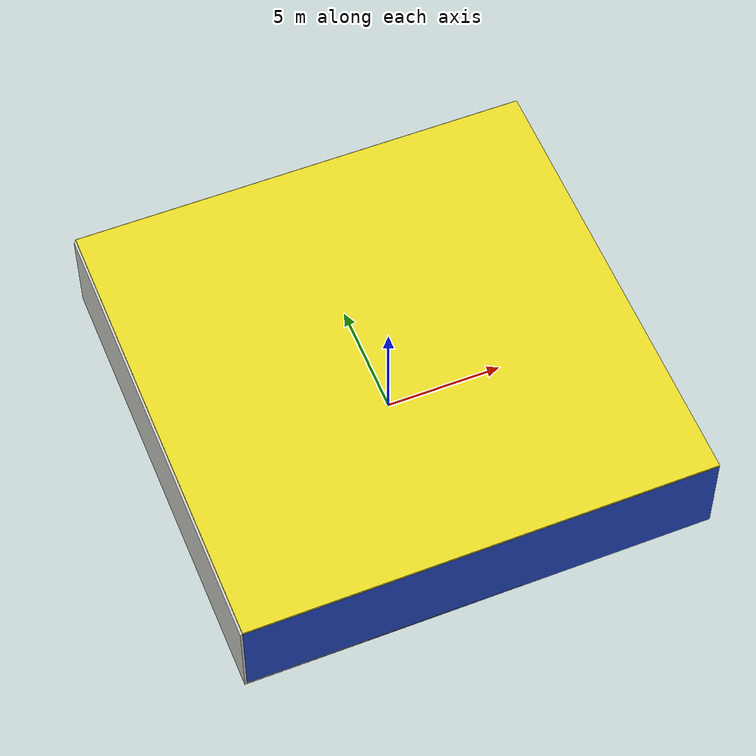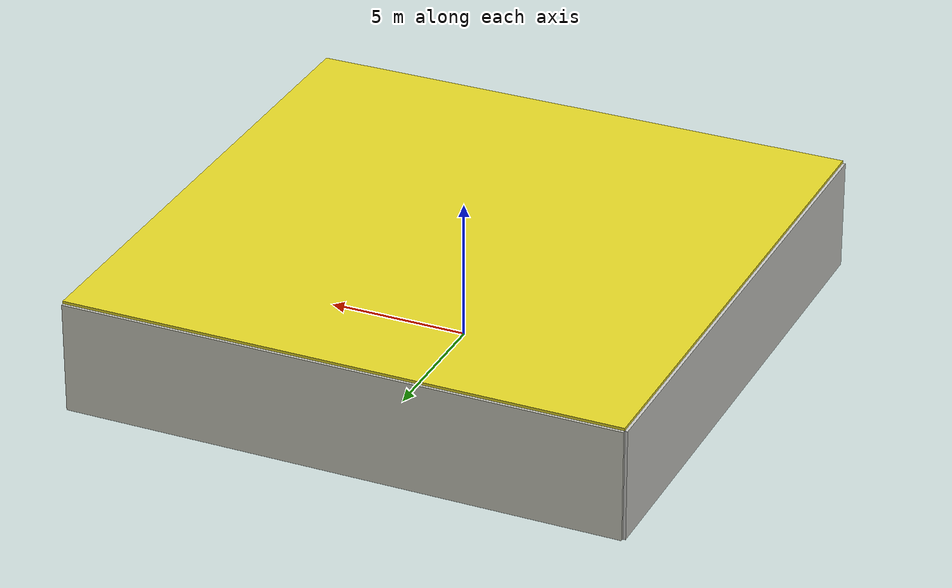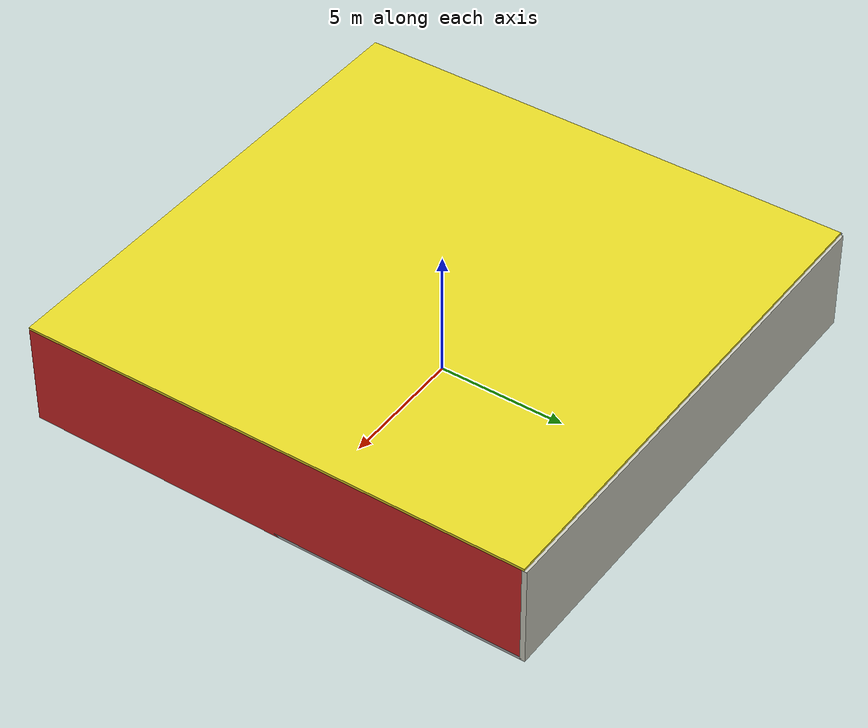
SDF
<sdf version="1.4">
 <world name="default">
  <physics type="ode">
   <max_step_size>0.001</max_step_size>
   <real_time_factor>1</real_time_factor>
   <real_time_update_rate>1000</real_time_update_rate>
   <gravity>0 0 -9.8</gravity>
  </physics>
  <scene><ambient>0.4 0.4 0.4 1</ambient><background>0.7 0.7 0.7 1</background><shadows>1</shadows></scene>
  <model name="Surrounding">
   <static>1</static>
   <link name="Ceiling">
    <collision name="Ceiling_Collision"><geometry><box><size>20 20 0.1</size></box></geometry></collision>
    <visual name="Ceiling_Visual">
     <geometry><box><size>20 20 0.1</size></box></geometry>
     <material>
      <script><uri>file://media/materials/scripts/gazebo.material</uri><name>Gazebo/YellowGlow</name></script>
     </material>
    </visual>
    <pose>0 0 4.05 0 0 0</pose>
   </link>
   <link name="Wall_South">
    <collision name="Wall_South_Collision">
     <geometry><box><size>20 0 4</size></box></geometry>
     <pose>0 0 2 0 -0 0</pose>
    </collision>
    <visual name="Wall_South_Visual">
     <pose>0 0 2 0 -0 0</pose>
     <geometry><box><size>20 0 4</size></box></geometry>
     <material>
      <script><uri>file://media/materials/scripts/gazebo.material</uri><name>Gazebo/Blue</name></script>
     </material>
    </visual>
    <velocity_decay><linear>0</linear><angular>0</angular></velocity_decay>
    <pose>0 -10 0 0 -0 0</pose>
   </link>
   <link name="Wall_East">
    <collision name="Wall_21_Collision">
     <geometry><box><size>20 0 4</size></box></geometry>
     <pose>0 0 2 0 -0 0</pose>
    </collision>
    <visual name="Wall_21_Visual">
     <pose>0 0 2 0 -0 0</pose>
     <geometry><box><size>20 0 4</size></box></geometry>
     <material>
      <script><uri>file://media/materials/scripts/gazebo.material</uri><name>Gazebo/RedGlow</name></script>
     </material>
    </visual>
    <velocity_decay><linear>0</linear><angular>0</angular></velocity_decay>
    <pose>10 0 0 0 -0 1.5708</pose>
   </link>
   <link name="Wall_North">
    <collision name="Wall_22_Collision">
     <geometry><box><size>20 0.2 4</size></box></geometry>
     <pose>0 0 2 0 -0 0</pose>
    </collision>
    <visual name="Wall_22_Visual">
     <pose>0 0 2 0 -0 0</pose>
     <geometry><box><size>20 0.2 4</size></box></geometry>
     <material>
      <script><uri>file://media/materials/scripts/gazebo.material</uri><name>Gazebo/PaintedWall</name></script>
     </material>
    </visual>
    <velocity_decay><linear>0</linear><angular>0</angular></velocity_decay>
    <pose>0 10 0 0 -0 0</pose>
   </link>
   <link name="Wall_West">
    <collision name="Wall_23_Collision">
     <geometry><box><size>20 0.2 4</size></box></geometry>
     <pose>0 0 2 0 -0 0</pose>
    </collision>
    <visual name="Wall_23_Visual">
     <pose>0 0 2 0 -0 0</pose>
     <geometry><box><size>20 0.2 4</size></box></geometry>
     <material>
      <script><uri>file://media/materials/scripts/gazebo.material</uri><name>Gazebo/CeilingTiled</name></script>
     </material>
    </visual>
    <velocity_decay><linear>0</linear><angular>0</angular></velocity_decay>
    <pose>-10 0 0 0 0 -1.5708</pose>
   </link>
   <link name="Ground_link">
    <collision name="collision">
     <pose>0 0 .05 0 -0 0</pose>
     <geometry><box><size>20 20 0.1</size></box></geometry>
    </collision>
    <visual name="visual">
     <pose>0 0 .05 0 -0 0</pose>
     <geometry><box><size>20 20 0.1</size></box></geometry>
     <material>
      <script><uri>file://media/materials/scripts/gazebo.material</uri><name>Gazebo/LightOff</name></script>
     </material>
    </visual>
   </link>
   <static>1</static>
  </model>
  <spherical_coordinates>
   <surface_model>EARTH_WGS84</surface_model>
   <latitude_deg>0</latitude_deg>
   <longitude_deg>0</longitude_deg>
   <elevation>0</elevation>
   <heading_deg>0</heading_deg>
  </spherical_coordinates>
  <light name="lightball_0" type="diffuse">
   <diffuse>0.8 0.8 0.8 1</diffuse>
   <specular>0.2 0.2 0.2 1</specular>
   <attenuation>
    <range>100</range>
    <constant>0.7</constant>
    <linear>0.01</linear>
    <quadratic>0.001</quadratic>
   </attenuation>
   <direction>-0.5 0.1 -0.9</direction>
   <pose>-6.44173568253 -9.70947510767 3.02352460259 0 0 0</pose>
  </light>
  <light name="lightball_1" type="diffuse">
   <diffuse>0.8 0.8 0.8 1</diffuse>
   <specular>0.2 0.2 0.2 1</specular>
   <attenuation>
    <range>100</range>
    <constant>0.7</constant>
    <linear>0.01</linear>
    <quadratic>0.001</quadratic>
   </attenuation>
   <direction>-0.5 0.1 -0.9</direction>
   <pose>-5.51301328571 -7.80484444751 0.822029645132 0 0 0</pose>
  </light>
  <light name="lightball_2" type="diffuse">
   <diffuse>0.8 0.8 0.8 1</diffuse>
   <specular>0.2 0.2 0.2 1</specular>
   <attenuation>
    <range>100</range>
    <constant>0.7</constant>
    <linear>0.01</linear>
    <quadratic>0.001</quadratic>
   </attenuation>
   <direction>-0.5 0.1 -0.9</direction>
   <pose>-5.56987666419 -9.88977734818 1.48972167287 0 0 0</pose>
  </light>
  <light name="lightball_3" type="diffuse">
   <diffuse>0.8 0.8 0.8 1</diffuse>
   <specular>0.2 0.2 0.2 1</specular>
   <attenuation>
    <range>100</range>
    <constant>0.7</constant>
    <linear>0.01</linear>
    <quadratic>0.001</quadratic>
   </attenuation>
   <direction>-0.5 0.1 -0.9</direction>
   <pose>1.17136760894 -3.89471572154 3.30845689022 0 0 0</pose>
  </light>
  <light name="lightball_4" type="diffuse">
   <diffuse>0.8 0.8 0.8 1</diffuse>
   <specular>0.2 0.2 0.2 1</specular>
   <attenuation>
    <range>100</range>
    <constant>0.7</constant>
    <linear>0.01</linear>
    <quadratic>0.001</quadratic>
   </attenuation>
   <direction>-0.5 0.1 -0.9</direction>
   <pose>-1.38998404318 -5.77208997117 2.94535867018 0 0 0</pose>
  </light>
  <light name="lightball_5" type="diffuse">
   <diffuse>0.8 0.8 0.8 1</diffuse>
   <specular>0.2 0.2 0.2 1</specular>
   <attenuation>
    <range>100</range>
    <constant>0.7</constant>
    <linear>0.01</linear>
    <quadratic>0.001</quadratic>
   </attenuation>
   <direction>-0.5 0.1 -0.9</direction>
   <pose>-1.95993767053 -9.02335437068 0.525957911534 0 0 0</pose>
  </light>
  <light name="lightball_6" type="diffuse">
   <diffuse>0.8 0.8 0.8 1</diffuse>
   <specular>0.2 0.2 0.2 1</specular>
   <attenuation>
    <range>100</range>
    <constant>0.7</constant>
    <linear>0.01</linear>
    <quadratic>0.001</quadratic>
   </attenuation>
   <direction>-0.5 0.1 -0.9</direction>
   <pose>0.459440820442 -2.84845942682 2.98059644105 0 0 0</pose>
  </light>
  <light name="lightball_7" type="diffuse">
   <diffuse>0.8 0.8 0.8 1</diffuse>
   <specular>0.2 0.2 0.2 1</specular>
   <attenuation>
    <range>100</range>
    <constant>0.7</constant>
    <linear>0.01</linear>
    <quadratic>0.001</quadratic>
   </attenuation>
   <direction>-0.5 0.1 -0.9</direction>
   <pose>-5.34842986448 8.62711398116 1.83553725111 0 0 0</pose>
  </light>
  <include>
   <uri>model://construction_cone</uri>
   <pose>-3.85408976187 6.89700385213 0 0 0 0.413759206799</pose>
  </include>
  <include>
   <uri>model://textured_shapes</uri>
   <pose>-1.92961127478 0.384939528111 0 0 0 1.58954591538</pose>
  </include>
  <include>
   <uri>model://textured_shapes</uri>
   <pose>-2.05680785588 5.03588960651 0 0 0 0.723722394112</pose>
  </include>
  <include><uri>model://cabinet</uri><pose>-0.330048749122 8.33201842964 0 0 0 1.7720445109</pose></include>
  <include><uri>model://table</uri><pose>2.379643517 -5.3301734492 0 0 0 2.9408440045</pose></include>
  <include><uri>model://table</uri><pose>4.73646366848 -1.40185026116 0 0 0 0.634551169303</pose></include>
  <include><uri>model://cabinet</uri><pose>8.47541567391 8.68038455399 0 0 0 2.72628930834</pose></include>
 </world>
</sdf>

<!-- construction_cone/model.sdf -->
<sdf version="1.5">
  <model name="Construction Cone">
    <link name="link">
      <collision name="collision">
        <geometry>
          <mesh>
            <scale>10 10 10</scale>
            <uri>file://isr-testbed/construction_cone/meshes/construction_cone.dae</uri>
          </mesh>
        </geometry>
      </collision>
      <visual name="visual">
        <geometry>
          <mesh>
            <scale>10 10 10</scale>
            <uri>file://isr-testbed/construction_cone/meshes/construction_cone.dae</uri>
          </mesh>
        </geometry>
      </visual>
    </link>
  </model>
</sdf>

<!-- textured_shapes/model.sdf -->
<sdf version="1.6">
  <model name="textured_shapes">
    <pose>0 0 0.5 0 0 0</pose>
    <link name="box">
      <pose>0 -1.5 0 0 0 0</pose>
      <collision name="collision">
        <geometry>
          <box>
            <size>1 1 1</size>
          </box>
        </geometry>
      </collision>
      <visual name="visual">
        <geometry>
          <box>
            <size>1 1 1</size>
          </box>
        </geometry>
        <material>
          <script>
            <uri>model://../model_source/models/textured_shapes/materials/scripts</uri>
            <uri>model://../model_source/models/textured_shapes/materials/textures</uri>
            <name>TexturedShape/Squares</name>
          </script>
        </material>
      </visual>
    </link>
    <link name="sphere">
      <collision name="collision">
        <geometry>
          <sphere>
            <radius>0.5</radius>
          </sphere>
        </geometry>
      </collision>
      <visual name="visual">
        <geometry>
          <sphere>
            <radius>0.5</radius>
          </sphere>
        </geometry>
        <material>
          <script>
            <uri>model://../model_source/models/textured_shapes/materials/scripts</uri>
            <uri>model://../model_source/models/textured_shapes/materials/textures</uri>
            <name>TexturedShape/Squares</name>
          </script>
        </material>
      </visual>
    </link>
    <link name="cylinder">
      <pose>0 1.5 0 0 0 0</pose>
      <collision name="collision">
        <geometry>
          <cylinder>
            <radius>0.5</radius>
            <length>1</length>
          </cylinder>
        </geometry>
      </collision>
      <visual name="visual">
        <geometry>
          <cylinder>
            <radius>0.5</radius>
            <length>1</length>
          </cylinder>
        </geometry>
        <material>
          <script>
            <uri>model://../model_source/models/textured_shapes/materials/scripts</uri>
            <uri>model://../model_source/models/textured_shapes/materials/textures</uri>
            <name>TexturedShape/Squares</name>
          </script>
        </material>
      </visual>
    </link>
  </model>
</sdf>

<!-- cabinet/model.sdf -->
<sdf version="1.5">
  <model name="cabinet">
    <static>true</static>
    <link name="cabinet_bottom_plate">
      <inertial>
        <pose>0 0 -1 0 0 0</pose>
        <inertia>
          <ixx>2.050000</ixx>
          <ixy>0</ixy>
          <ixz>0</ixz>
          <iyy>2.050000</iyy>
          <iyz>0</iyz>
          <izz>2.050000</izz>
        </inertia>
        <mass>25.000000</mass>
      </inertial>
      <collision name="cabinet_bottom_plate_geom">
        <pose>0 0 0.010000 0 0 0</pose>
        <geometry>
          <box>
            <size>0.450000 0.450000 0.020000</size>
          </box>
        </geometry>
      </collision>
      <visual name="cabinet_bottom_plate_geom_visual">
        <pose>0 0 0.010000 0 0 0</pose>
        <geometry>
          <box>
            <size>0.450000 0.450000 0.020000</size>
          </box>
        </geometry>
        <material>
          <script>
            <uri>model://media/materials/scripts/gazebo.material</uri>
            <name>Gazebo/Wood</name>
          </script>
        </material>
      </visual>
      <collision name="cabinet_bottom_plate_geom_cabinet_back_plate">
        <pose>0.235000 0 0.510000 0 0 0</pose>
        <geometry>
          <box>
            <size>0.020000 0.450000 1.020000</size>
          </box>
        </geometry>
      </collision>
      <visual name="cabinet_bottom_plate_geom_cabinet_back_plate_visual">
        <pose>0.235000 0 0.510000 0 0 0</pose>
        <geometry>
          <box>
            <size>0.020000 0.450000 1.020000</size>
          </box>
        </geometry>
        <material>
          <script>
            <uri>model://media/materials/scripts/gazebo.material</uri>
            <name>Gazebo/Wood</name>
          </script>
        </material>
      </visual>
      <collision name="cabinet_bottom_plate_geom_cabinet_left_plate">
        <pose>0 0.235000 0.510000 0 0 0</pose>
        <geometry>
          <box>
            <size>0.450000 0.020000 1.020000</size>
          </box>
        </geometry>
      </collision>
      <visual name="cabinet_bottom_plate_geom_cabinet_left_plate_visual">
        <pose>0 0.235000 0.510000 0 0 0</pose>
        <geometry>
          <box>
            <size>0.450000 0.020000 1.020000</size>
          </box>
        </geometry>
        <material>
          <script>
            <uri>model://media/materials/scripts/gazebo.material</uri>
            <name>Gazebo/Wood</name>
          </script>
        </material>
      </visual>
      <collision name="cabinet_bottom_plate_geom_cabinet_middle_plate">
        <pose>0 0 0.510000 0 0 0</pose>
        <geometry>
          <box>
            <size>0.450000 0.450000 0.020000</size>
          </box>
        </geometry>
      </collision>
      <visual name="cabinet_bottom_plate_geom_cabinet_middle_plate_visual">
        <pose>0 0 0.510000 0 0 0</pose>
        <geometry>
          <box>
            <size>0.450000 0.450000 0.020000</size>
          </box>
        </geometry>
        <material>
          <script>
            <uri>model://media/materials/scripts/gazebo.material</uri>
            <name>Gazebo/Wood</name>
          </script>
        </material>
      </visual>
      <collision name="cabinet_bottom_plate_geom_cabinet_right_plate">
        <pose>0 -0.235000 0.510000 0 0 0</pose>
        <geometry>
          <box>
            <size>0.450000 0.020000 1.020000</size>
          </box>
        </geometry>
      </collision>
      <visual name="cabinet_bottom_plate_geom_cabinet_right_plate_visual">
        <pose>0 -0.235000 0.510000 0 0 0</pose>
        <geometry>
          <box>
            <size>0.450000 0.020000 1.020000</size>
          </box>
        </geometry>
        <material>
          <script>
            <uri>model://media/materials/scripts/gazebo.material</uri>
            <name>Gazebo/Wood</name>
          </script>
        </material>
      </visual>
      <collision name="cabinet_bottom_plate_geom_cabinet_top_plate">
        <pose>0 0 1.010000 0 0 0</pose>
        <geometry>
          <box>
            <size>0.450000 0.450000 0.020000</size>
          </box>
        </geometry>
      </collision>
      <visual name="cabinet_bottom_plate_geom_cabinet_top_plate_visual">
        <pose>0 0 1.010000 0 0 0</pose>
        <geometry>
          <box>
            <size>0.450000 0.450000 0.020000</size>
          </box>
        </geometry>
        <material>
          <script>
            <uri>model://media/materials/scripts/gazebo.material</uri>
            <name>Gazebo/Wood</name>
          </script>
        </material>
      </visual>
    </link>
  </model>
</sdf>

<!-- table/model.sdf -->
<sdf version="1.5">
  <model name="table">
    <static>true</static>
    <link name="link">
      <collision name="surface">
        <pose>0 0 1.0 0 0 0</pose>
        <geometry>
          <box>
            <size>1.5 0.8 0.03</size>
          </box>
        </geometry>
        <surface>
          <friction>
            <ode>
              <mu>0.6</mu>
              <mu2>0.6</mu2>
            </ode>
          </friction>
        </surface>
      </collision>
      <visual name="visual1">
        <pose>0 0 1.0 0 0 0</pose>
        <geometry>
          <box>
            <size>1.5 0.8 0.03</size>
          </box>
        </geometry>
        <material>
          <script>
            <uri>model://media/materials/scripts/gazebo.material</uri>
            <name>Gazebo/Wood</name>
          </script>
        </material>
      </visual>
      <collision name="front_left_leg">
        <pose>0.68 0.38 0.5 0 0 0</pose>
        <geometry>
          <cylinder>
            <radius>0.02</radius>
            <length>1.0</length>
          </cylinder>
        </geometry>
      </collision>
      <visual name="front_left_leg">
        <pose>0.68 0.38 0.5 0 0 0</pose>
        <geometry>
          <cylinder>
            <radius>0.02</radius>
            <length>1.0</length>
          </cylinder>
        </geometry>
        <material>
          <script>
            <uri>model://media/materials/scripts/gazebo.material</uri>
            <name>Gazebo/Grey</name>
          </script>
        </material>
      </visual>
      <collision name="front_right_leg">
        <pose>0.68 -0.38 0.5 0 0 0</pose>
        <geometry>
          <cylinder>
            <radius>0.02</radius>
            <length>1.0</length>
          </cylinder>
        </geometry>
      </collision>
      <visual name="front_right_leg">
        <pose>0.68 -0.38 0.5 0 0 0</pose>
        <geometry>
          <cylinder>
            <radius>0.02</radius>
            <length>1.0</length>
          </cylinder>
        </geometry>
        <material>
          <script>
            <uri>model://media/materials/scripts/gazebo.material</uri>
            <name>Gazebo/Grey</name>
          </script>
        </material>
      </visual>
      <collision name="back_right_leg">
        <pose>-0.68 -0.38 0.5 0 0 0</pose>
        <geometry>
          <cylinder>
            <radius>0.02</radius>
            <length>1.0</length>
          </cylinder>
        </geometry>
      </collision>
      <visual name="back_right_leg">
        <pose>-0.68 -0.38 0.5 0 0 0</pose>
        <geometry>
          <cylinder>
            <radius>0.02</radius>
            <length>1.0</length>
          </cylinder>
        </geometry>
        <material>
          <script>
            <uri>model://media/materials/scripts/gazebo.material</uri>
            <name>Gazebo/Grey</name>
          </script>
        </material>
      </visual>
      <collision name="back_left_leg">
        <pose>-0.68 0.38 0.5 0 0 0</pose>
        <geometry>
          <cylinder>
            <radius>0.02</radius>
            <length>1.0</length>
          </cylinder>
        </geometry>
      </collision>
      <visual name="back_left_leg">
        <pose>-0.68 0.38 0.5 0 0 0</pose>
        <geometry>
          <cylinder>
            <radius>0.02</radius>
            <length>1.0</length>
          </cylinder>
        </geometry>
        <material>
          <script>
            <uri>model://media/materials/scripts/gazebo.material</uri>
            <name>Gazebo/Grey</name>
          </script>
        </material>
      </visual>
    </link>
  </model>
</sdf>
